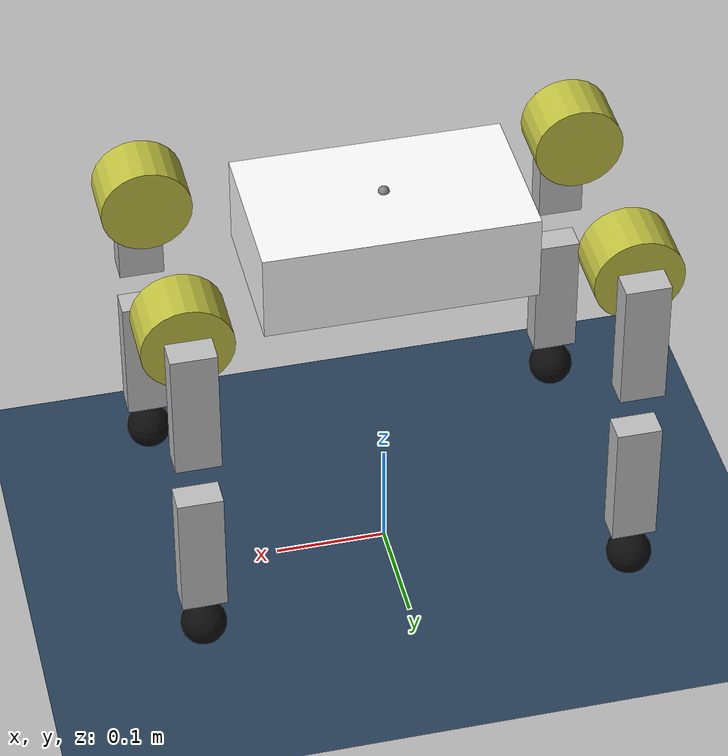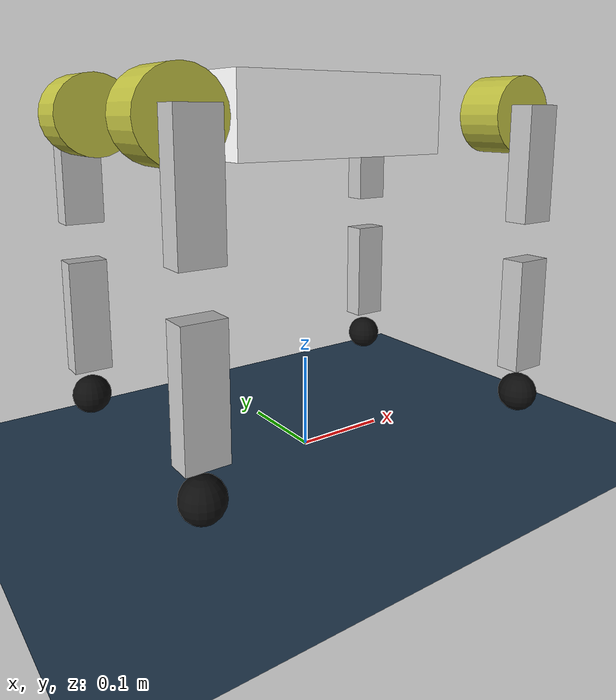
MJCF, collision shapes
<mujoco model="dog scene">
  <include file="dog_V1_wl.xml" />

  <statistic center="0 0 0.1" extent="0.8"/>

  <visual>
    <headlight diffuse="0.6 0.6 0.6" ambient="0.3 0.3 0.3" specular="0 0 0"/>
    <rgba haze="0.15 0.25 0.35 1"/>
    <global azimuth="-130" elevation="-20"/>
  </visual>

  <asset>
    <texture type="skybox" builtin="gradient" rgb1="0.3 0.5 0.7" rgb2="0 0 0" width="512" height="3072"/>
    <texture type="2d" name="groundplane" builtin="checker" mark="edge" rgb1="0.2 0.3 0.4" rgb2="0.1 0.2 0.3"
      markrgb="0.8 0.8 0.8" width="300" height="300"/>
    <material name="groundplane" texture="groundplane" texuniform="true" texrepeat="5 5" reflectance="0.2"/>
  </asset>

  <worldbody>
    <light pos="0 0 1.5" dir="0 0 -1" directional="true"/>
    <geom name="floor" size="0 0 0.05" type="plane" material="groundplane"/>

  </worldbody>
</mujoco>

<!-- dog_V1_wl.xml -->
<mujoco model="dog">
  <compiler angle="radian" meshdir="../meshes/"/>

  <asset>
    <mesh name="base_link" file="base_link.STL"/>
    <mesh name="Link_ZQ1" file="Link_ZQ1.STL"/>
    <mesh name="abad_link" file="abad_link.STL"/>
    <mesh name="hip_link" file="hip_link.STL"/>
    <mesh name="knee_link" file="knee_link.STL"/>
    <mesh name="foot_link" file="foot_link.STL"/>
    <mesh name="Link_ZH1" file="Link_ZH1.STL"/>
    <mesh name="abad_link1" content_type="model/stl" file="abad_link.STL" scale="-1 1 1"/>
    <mesh name="Link_YH1" file="Link_YH1.STL"/>
    <mesh name="abad_link2" content_type="model/stl" file="abad_link.STL" scale="-1 -1 1"/>
    <mesh name="hip_link1" content_type="model/stl" file="hip_link.STL" scale="1 -1 1"/>
    <mesh name="knee_link1" content_type="model/stl" file="knee_link.STL" scale="1 -1 1"/>
    <mesh name="Link_YQ1" file="Link_YQ1.STL"/>
    <mesh name="abad_link3" content_type="model/stl" file="abad_link.STL" scale="1 -1 1"/>
  </asset>

  <worldbody>
    <body name="base_link" pos="0 0 0.4">
      <geom type="mesh" contype="0" conaffinity="0" group="1" density="0" rgba="1 1 1 1" mesh="base_link"/>
      <joint name="floating_base_joint" type="free" limited="false" actuatorfrclimited="false"/>
      <geom size="0.12 0.07 0.04" pos="0 0 -0.04" type="box" rgba="1 1 1 1"/>
      <geom pos="0.113 0.044 0" type="mesh" contype="0" conaffinity="0" group="1" density="0" rgba="1 1 1 1" mesh="Link_ZQ1"/>
      <geom pos="-0.113 0.044 0" type="mesh" contype="0" conaffinity="0" group="1" density="0" rgba="1 1 1 1" mesh="Link_ZH1"/>
      <geom pos="-0.113 -0.044 0" quat="6.68662e-08 0 0 -1" type="mesh" contype="0" conaffinity="0" group="1" density="0" rgba="1 1 1 1" mesh="Link_YH1"/>
      <geom pos="0.113 -0.044 0" type="mesh" contype="0" conaffinity="0" group="1" density="0" rgba="1 1 1 1" mesh="Link_YQ1"/>
      <site name="imu" pos="-0.0 0 0." />
      <body name="Link_ZQ2" pos="0.193 0.055 -0.04">
        <inertial pos="-0.00318972 -0.00729879 0.000193611" quat="0.503811 0.507399 0.533281 0.452032" mass="0.44753" diaginertia="0.00036926 0.000331769 0.000315768"/>
        <joint name="joint_ZQ2" pos="0 0 0" axis="1 0 0" range="-1.134 1.134" actuatorfrcrange="-23.7 23.7"/>
        <geom type="mesh" contype="0" conaffinity="0" group="1" density="0" rgba="0.75 0.75 0.25 1" mesh="abad_link"/>
        <geom size="0.04 0.025" pos="0 0.0385 0" quat="0.707107 0.707107 0 0" type="cylinder" rgba="0.75 0.75 0.25 1"/>
        <body name="Link_ZQ3" pos="0 0.077 0">
          <inertial pos="-0.00244577 -0.0185518 -0.0223481" quat="0.497014 0.499245 0.505462 0.498237" mass="0.52665" diaginertia="0.00088403 0.000596003 0.000479967"/>
          <joint name="joint_ZQ3" pos="0 0 0" axis="0 1 0" range="-2.792 3.141" actuatorfrcrange="-23.7 23.7"/>
          <geom type="mesh" contype="0" conaffinity="0" group="1" density="0" rgba="0.75 0.75 0.75 1" mesh="hip_link"/>
          <geom size="0.02 0.0125 0.06" pos="0 0 -0.05" type="box" rgba="0.75 0.75 0.75 1"/>
          <body name="Link_ZQ4" pos="0 0 -0.15">
            <inertial pos="-0.004959 1.07531e-06 -0.0867478" quat="0.706518 -0.025079 -0.0250594 0.706807" mass="0.0795044" diaginertia="0.00034479 0.000339542 1.61993e-05"/>
            <joint name="joint_ZQ4" pos="0 0 0" axis="0 1 0" range="-2.705 -0.436" actuatorfrcrange="-45 45"/>
            <geom type="mesh" contype="0" conaffinity="0" group="1" density="0" rgba="0.75 0.75 0.75 1" mesh="knee_link"/>
            <geom size="0.02 0.0125 0.06" pos="0 0 -0.06" type="box" rgba="0.75 0.75 0.75 1"/>
            <geom pos="0 0 -0.15" quat="1 0 0 0" type="mesh" contype="0" conaffinity="0" group="1" density="0" rgba="0.05 0.05 0.05 1" mesh="foot_link"/>
            <geom size="0.0205" pos="0 0 -0.15" rgba="0.05 0.05 0.05 1"/>
          </body>
        </body>
      </body>
      <body name="Link_ZH2" pos="-0.193 0.055 -0.04">
        <inertial pos="0.00318972 -0.00729879 0.000193611" quat="0.533281 0.452032 0.503811 0.507399" mass="0.44753" diaginertia="0.00036926 0.000331769 0.000315768"/>
        <joint name="joint_ZH2" pos="0 0 0" axis="1 0 0" range="-1.134 1.134" actuatorfrcrange="-23.7 23.7"/>
        <geom type="mesh" contype="0" conaffinity="0" group="1" density="0" rgba="0.75 0.75 0.25 1" mesh="abad_link1"/>
        <geom size="0.04 0.025" pos="0 0.0385 0" quat="0.707107 0.707107 0 0" type="cylinder" rgba="0.75 0.75 0.25 1"/>
        <body name="Link_ZH3" pos="0 0.077 0">
          <inertial pos="-0.00244577 -0.0185518 -0.0223481" quat="0.498237 0.505462 0.499245 0.497014" mass="0.52665" diaginertia="0.00088403 0.000596003 0.000479967"/>
          <joint name="joint_ZH3" pos="0 0 0" axis="0 1 0" range="-2.792 3.141" actuatorfrcrange="-23.7 23.7"/>
          <geom type="mesh" contype="0" conaffinity="0" group="1" density="0" rgba="0.75 0.75 0.75 1" mesh="hip_link"/>
          <geom size="0.02 0.0125 0.06" pos="0 0 -0.05" type="box" rgba="0.75 0.75 0.75 1"/>
          <body name="Link_ZH4" pos="0 0 -0.15">
            <inertial pos="-0.004959 1.07531e-06 -0.0867478" quat="0.706518 -0.025079 -0.0250594 0.706807" mass="0.0795044" diaginertia="0.00034479 0.000339542 1.61993e-05"/>
            <joint name="joint_ZH4" pos="0 0 0" axis="0 1 0" range="-2.705 -0.436" actuatorfrcrange="-45 45"/>
            <geom type="mesh" contype="0" conaffinity="0" group="1" density="0" rgba="0.75 0.75 0.75 1" mesh="knee_link"/>
            <geom size="0.02 0.0125 0.06" pos="0 0 -0.06" type="box" rgba="0.75 0.75 0.75 1"/>
            <geom pos="0 0 -0.15" quat="1 0 0 0" type="mesh" contype="0" conaffinity="0" group="1" density="0" rgba="0.05 0.05 0.05 1" mesh="foot_link"/>
            <geom size="0.0205" pos="0 0 -0.15" rgba="0.05 0.05 0.05 1"/>
          </body>
        </body>
      </body>
      <body name="Link_YH2" pos="-0.193 -0.055 -0.04" quat="1 0 0 -0.00079626">
        <inertial pos="0.00318972 0.00729879 0.000193611" quat="0.507399 0.503811 0.452032 0.533281" mass="0.44753" diaginertia="0.00036926 0.000331769 0.000315768"/>
        <joint name="joint_YH2" pos="0 0 0" axis="1 0 0" range="-1.134 1.134" actuatorfrcrange="-23.7 23.7"/>
        <geom type="mesh" contype="0" conaffinity="0" group="1" density="0" rgba="0.75 0.75 0.25 1" mesh="abad_link2"/>
        <geom size="0.04 0.025" pos="0 -0.0385 0" quat="0.707107 0.707107 0 0" type="cylinder" rgba="0.75 0.75 0.25 1"/>
        <body name="Link_YH3" pos="0 -0.077 0">
          <inertial pos="-0.00244577 0.0185518 -0.0223481" quat="0.498237 0.505462 0.499245 0.497014" mass="0.52665" diaginertia="0.00088403 0.000596003 0.000479967"/>
          <joint name="joint_YH3" pos="0 0 0" axis="0 1 0" range="-2.792 3.141" actuatorfrcrange="-23.7 23.7"/>
          <geom type="mesh" contype="0" conaffinity="0" group="1" density="0" rgba="0.75 0.75 0.75 1" mesh="hip_link1"/>
          <geom size="0.02 0.0125 0.06" pos="0 0 -0.05" type="box" rgba="0.75 0.75 0.75 1"/>
          <body name="Link_YH4" pos="0 0 -0.15">
            <inertial pos="-0.004959 -1.07531e-06 -0.0867478" quat="0.706807 -0.0250594 -0.025079 0.706518" mass="0.0795044" diaginertia="0.00034479 0.000339542 1.61993e-05"/>
            <joint name="joint_YH4" pos="0 0 0" axis="0 1 0" range="-2.705 -0.436" actuatorfrcrange="-45 45"/>
            <geom type="mesh" contype="0" conaffinity="0" group="1" density="0" rgba="0.75 0.75 0.75 1" mesh="knee_link1"/>
            <geom size="0.02 0.0125 0.06" pos="0 0 -0.06" type="box" rgba="0.75 0.75 0.75 1"/>
            <geom pos="0 0 -0.15" quat="1 0 0 0" type="mesh" contype="0" conaffinity="0" group="1" density="0" rgba="0.05 0.05 0.05 1" mesh="foot_link"/>
            <geom size="0.0205" pos="0 0 -0.15" rgba="0.05 0.05 0.05 1"/>
          </body>
        </body>
      </body>
      <body name="Link_YQ2" pos="0.193 -0.055 -0.04">
        <inertial pos="-0.00318972 0.00729879 0.000193611" quat="0.452032 0.533281 0.507399 0.503811" mass="0.44753" diaginertia="0.00036926 0.000331769 0.000315768"/>
        <joint name="joint_YQ2" pos="0 0 0" axis="1 0 0" range="-1.134 1.134" actuatorfrcrange="-23.7 23.7"/>
        <geom type="mesh" contype="0" conaffinity="0" group="1" density="0" rgba="0.75 0.75 0.25 1" mesh="abad_link3"/>
        <geom size="0.04 0.025" pos="0 -0.0385 0" quat="0.707107 0.707107 0 0" type="cylinder" rgba="0.75 0.75 0.25 1"/>
        <body name="Link_YQ3" pos="0 -0.077 0">
          <inertial pos="-0.00244577 0.0185518 -0.0223481" quat="0.498237 0.505462 0.499245 0.497014" mass="0.52665" diaginertia="0.00088403 0.000596003 0.000479967"/>
          <joint name="joint_YQ3" pos="0 0 0" axis="0 1 0" range="-2.792 3.141" actuatorfrcrange="-23.7 23.7"/>
          <geom type="mesh" contype="0" conaffinity="0" group="1" density="0" rgba="0.75 0.75 0.75 1" mesh="hip_link"/>
          <geom size="0.02 0.0125 0.06" pos="0 0 -0.05" type="box" rgba="0.75 0.75 0.75 1"/>
          <body name="Link_YQ4" pos="0 0 -0.15">
            <inertial pos="-0.004959 -1.07531e-06 -0.0867478" quat="0.706807 -0.0250594 -0.025079 0.706518" mass="0.0795044" diaginertia="0.00034479 0.000339542 1.61993e-05"/>
            <joint name="joint_YQ4" pos="0 0 0" axis="0 1 0" range="-2.705 -0.436" actuatorfrcrange="-45 45"/>
            <geom type="mesh" contype="0" conaffinity="0" group="1" density="0" rgba="0.75 0.75 0.75 1" mesh="knee_link"/>
            <geom size="0.02 0.0125 0.06" pos="0 0 -0.06" type="box" rgba="0.75 0.75 0.75 1"/>
            <geom pos="0 0 -0.15" quat="1 0 0 0" type="mesh" contype="0" conaffinity="0" group="1" density="0" rgba="0.05 0.05 0.05 1" mesh="foot_link"/>
            <geom size="0.0205" pos="0 0 -0.15" rgba="0.05 0.05 0.05 1"/>
          </body>
        </body>
      </body>
    </body>
  </worldbody>

  <actuator>
    <motor name="FL1" joint="joint_ZQ2"/>
    <motor name="FR1" joint="joint_YQ2"/>
    <motor name="RL1" joint="joint_ZH2"/>
    <motor name="RR1" joint="joint_YH2"/>
    <motor name="FL2" joint="joint_ZQ3"/>
    <motor name="FR2" joint="joint_YQ3"/>
    <motor name="RL2" joint="joint_ZH3"/>
    <motor name="RR2" joint="joint_YH3"/>
    <motor name="FL3" joint="joint_ZQ4"/>
    <motor name="FR3" joint="joint_YQ4"/>
    <motor name="RL3" joint="joint_ZH4"/>
    <motor name="RR3" joint="joint_YH4"/>
  </actuator>

  <sensor>
    <jointpos name="FR_hip_pos" joint="joint_YQ2" />
    <jointpos name="FR_thigh_pos" joint="joint_YQ3" />
    <jointpos name="FR_calf_pos" joint="joint_YQ4" />
    <jointpos name="FL_hip_pos" joint="joint_ZQ2" />
    <jointpos name="FL_thigh_pos" joint="joint_ZQ3" />
    <jointpos name="FL_calf_pos" joint="joint_ZQ4" />
    <jointpos name="RR_hip_pos" joint="joint_YH2" />
    <jointpos name="RR_thigh_pos" joint="joint_YH3" />
    <jointpos name="RR_calf_pos" joint="joint_YH4" />
    <jointpos name="RL_hip_pos" joint="joint_ZH2" />
    <jointpos name="RL_thigh_pos" joint="joint_ZH3" />
    <jointpos name="RL_calf_pos" joint="joint_ZH4" />

    <jointvel name="FR_hip_vel" joint="joint_YQ2" />
    <jointvel name="FR_thigh_vel" joint="joint_YQ3" />
    <jointvel name="FR_calf_vel" joint="joint_YQ4" />
    <jointvel name="FL_hip_vel" joint="joint_ZQ2" />
    <jointvel name="FL_thigh_vel" joint="joint_ZQ3" />
    <jointvel name="FL_calf_vel" joint="joint_ZQ4" />
    <jointvel name="RR_hip_vel" joint="joint_YH2" />
    <jointvel name="RR_thigh_vel" joint="joint_YH3" />
    <jointvel name="RR_calf_vel" joint="joint_YH4" />
    <jointvel name="RL_hip_vel" joint="joint_ZH2" />
    <jointvel name="RL_thigh_vel" joint="joint_ZH3" />
    <jointvel name="RL_calf_vel" joint="joint_ZH4" />

    <jointactuatorfrc name="FR_hip_torque" joint="joint_YQ2" noise="0.01" />
    <jointactuatorfrc name="FR_thigh_torque" joint="joint_YQ3" noise="0.01" />
    <jointactuatorfrc name="FR_calf_torque" joint="joint_YQ4" noise="0.01" />
    <jointactuatorfrc name="FL_hip_torque" joint="joint_ZQ2" noise="0.01" />
    <jointactuatorfrc name="FL_thigh_torque" joint="joint_ZQ3" noise="0.01" />
    <jointactuatorfrc name="FL_calf_torque" joint="joint_ZQ4" noise="0.01" />
    <jointactuatorfrc name="RR_hip_torque" joint="joint_YH2" noise="0.01" />
    <jointactuatorfrc name="RR_thigh_torque" joint="joint_YH3" noise="0.01" />
    <jointactuatorfrc name="RR_calf_torque" joint="joint_YH4" noise="0.01" />
    <jointactuatorfrc name="RL_hip_torque" joint="joint_ZH2" noise="0.01" />
    <jointactuatorfrc name="RL_thigh_torque" joint="joint_ZH3" noise="0.01" />
    <jointactuatorfrc name="RL_calf_torque" joint="joint_ZH4" noise="0.01" />

    <framequat name="imu_quat" objtype="site" objname="imu" />
    <gyro name="imu_gyro" site="imu" />
    <accelerometer name="imu_acc" site="imu" />

    <framepos name="frame_pos" objtype="site" objname="imu" />
    <framelinvel name="frame_vel" objtype="site" objname="imu" />
  </sensor>
</mujoco>
